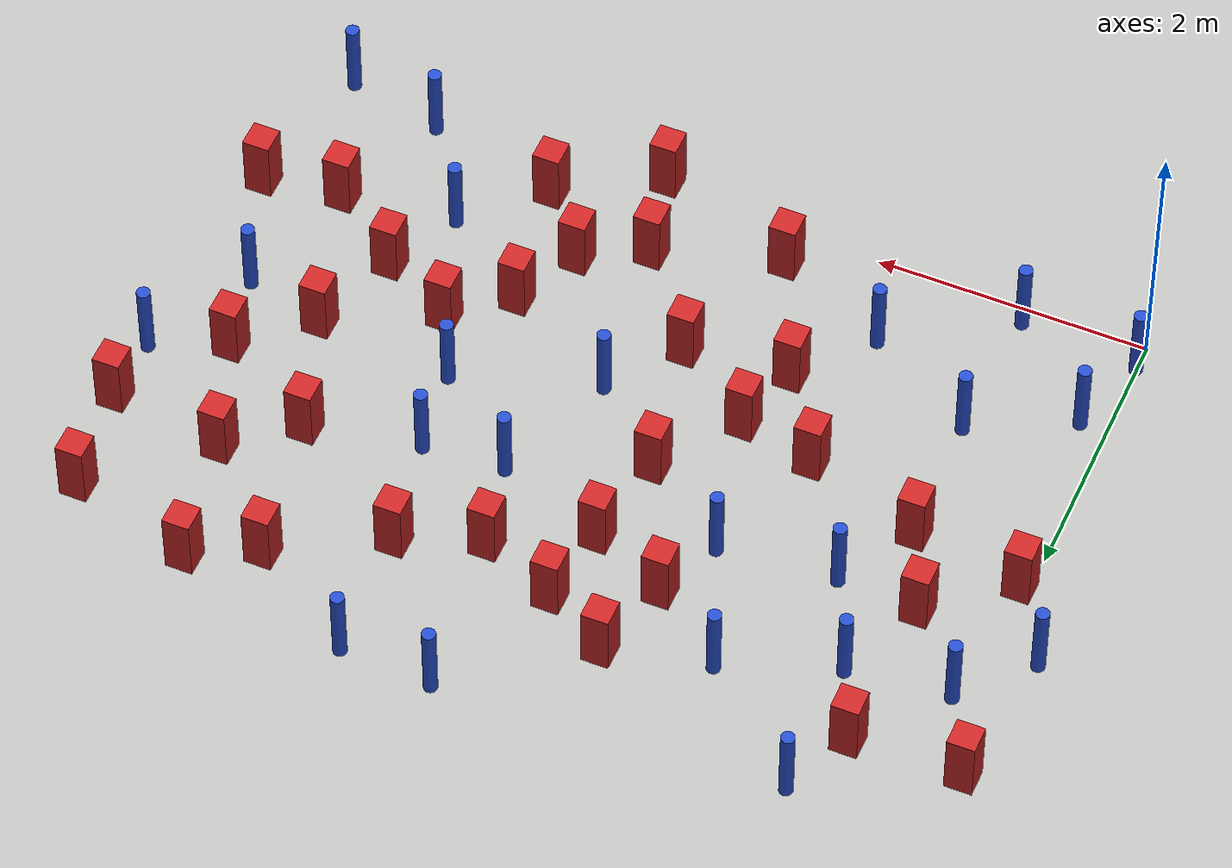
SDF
<sdf version="1.6">
 <model name="dense_37">
  <model name="square_post_obstacle2">
   <static>true</static>
   <pose>-0.138965825792 3.89410492491 1.91545236811e-07 -7.35059704564e-06 1.12565212e-07 2.39332434364e-05</pose>
   <link name="link">
    <pose>0 0 0.25 0 -0 0</pose>
    <inertial>
     <mass>100</mass>
     <inertia>
      <ixx>0.166667</ixx>
      <ixy>0</ixy>
      <ixz>0</ixz>
      <iyy>0.166667</iyy>
      <iyz>0</iyz>
      <izz>0.166667</izz>
     </inertia>
    </inertial>
    <collision name="collision"><geometry><box><size>.2 .2 .5</size></box></geometry></collision>
    <visual name="visual">
     <geometry><box><size>.2 .2 .5</size></box></geometry>
     <material>
      <script><name>Gazebo/Red</name><uri>file://media/materials/scripts/gazebo.material</uri></script>
     </material>
    </visual>
   </link>
  </model>
  <model name="square_post_obstacle3">
   <static>true</static>
   <pose>5.14463022854 1.38851551591 1.91545236811e-07 -7.35059704564e-06 1.12565212e-07 2.39332434364e-05</pose>
   <link name="link">
    <pose>0 0 0.25 0 -0 0</pose>
    <inertial>
     <mass>100</mass>
     <inertia>
      <ixx>0.166667</ixx>
      <ixy>0</ixy>
      <ixz>0</ixz>
      <iyy>0.166667</iyy>
      <iyz>0</iyz>
      <izz>0.166667</izz>
     </inertia>
    </inertial>
    <collision name="collision"><geometry><box><size>.2 .2 .5</size></box></geometry></collision>
    <visual name="visual">
     <geometry><box><size>.2 .2 .5</size></box></geometry>
     <material>
      <script><name>Gazebo/Red</name><uri>file://media/materials/scripts/gazebo.material</uri></script>
     </material>
    </visual>
   </link>
  </model>
  <model name="pole_obstacle3">
   <static>true</static>
   <pose>5.97604875241 1.91269889403 7.38925637345e-09 -8.471706928e-08 1.24976765134e-08 -1.74513093015e-07</pose>
   <link name="link">
    <pose>0 0 0.3 0 -0 0</pose>
    <inertial>
     <mass>1</mass>
     <inertia><ixx>0.145833</ixx><ixy>0</ixy><ixz>0</ixz><iyy>0.145833</iyy><iyz>0</iyz><izz>0.125</izz></inertia>
    </inertial>
    <collision name="collision">
     <geometry><cylinder><radius>0.05</radius><length>.6</length></cylinder></geometry>
    </collision>
    <visual name="visual">
     <geometry><cylinder><radius>0.05</radius><length>.6</length></cylinder></geometry>
     <material>
      <script><name>Gazebo/Blue</name><uri>file://media/materials/scripts/gazebo.material</uri></script>
     </material>
    </visual>
   </link>
  </model>
  <model name="square_post_obstacle10">
   <static>true</static>
   <pose>3.95411249766 0.828914553557 1.91545236811e-07 -7.35059704564e-06 1.12565212e-07 2.39332434364e-05</pose>
   <link name="link">
    <pose>0 0 0.25 0 -0 0</pose>
    <inertial>
     <mass>100</mass>
     <inertia>
      <ixx>0.166667</ixx>
      <ixy>0</ixy>
      <ixz>0</ixz>
      <iyy>0.166667</iyy>
      <iyz>0</iyz>
      <izz>0.166667</izz>
     </inertia>
    </inertial>
    <collision name="collision"><geometry><box><size>.2 .2 .5</size></box></geometry></collision>
    <visual name="visual">
     <geometry><box><size>.2 .2 .5</size></box></geometry>
     <material>
      <script><name>Gazebo/Red</name><uri>file://media/materials/scripts/gazebo.material</uri></script>
     </material>
    </visual>
   </link>
  </model>
  <model name="square_post_obstacle24">
   <static>true</static>
   <pose>4.1140175235 3.5957617354 1.91545236811e-07 -7.35059704564e-06 1.12565212e-07 2.39332434364e-05</pose>
   <link name="link">
    <pose>0 0 0.25 0 -0 0</pose>
    <inertial>
     <mass>100</mass>
     <inertia>
      <ixx>0.166667</ixx>
      <ixy>0</ixy>
      <ixz>0</ixz>
      <iyy>0.166667</iyy>
      <iyz>0</iyz>
      <izz>0.166667</izz>
     </inertia>
    </inertial>
    <collision name="collision"><geometry><box><size>.2 .2 .5</size></box></geometry></collision>
    <visual name="visual">
     <geometry><box><size>.2 .2 .5</size></box></geometry>
     <material>
      <script><name>Gazebo/Red</name><uri>file://media/materials/scripts/gazebo.material</uri></script>
     </material>
    </visual>
   </link>
  </model>
  <model name="square_post_obstacle29">
   <static>true</static>
   <pose>5.37796084478 2.05873233152 1.91545236811e-07 -7.35059704564e-06 1.12565212e-07 2.39332434364e-05</pose>
   <link name="link">
    <pose>0 0 0.25 0 -0 0</pose>
    <inertial>
     <mass>100</mass>
     <inertia>
      <ixx>0.166667</ixx>
      <ixy>0</ixy>
      <ixz>0</ixz>
      <iyy>0.166667</iyy>
      <iyz>0</iyz>
      <izz>0.166667</izz>
     </inertia>
    </inertial>
    <collision name="collision"><geometry><box><size>.2 .2 .5</size></box></geometry></collision>
    <visual name="visual">
     <geometry><box><size>.2 .2 .5</size></box></geometry>
     <material>
      <script><name>Gazebo/Red</name><uri>file://media/materials/scripts/gazebo.material</uri></script>
     </material>
    </visual>
   </link>
  </model>
  <model name="square_post_obstacle31">
   <static>true</static>
   <pose>3.49266288055 0.577960330679 1.91545236811e-07 -7.35059704564e-06 1.12565212e-07 2.39332434364e-05</pose>
   <link name="link">
    <pose>0 0 0.25 0 -0 0</pose>
    <inertial>
     <mass>100</mass>
     <inertia>
      <ixx>0.166667</ixx>
      <ixy>0</ixy>
      <ixz>0</ixz>
      <iyy>0.166667</iyy>
      <iyz>0</iyz>
      <izz>0.166667</izz>
     </inertia>
    </inertial>
    <collision name="collision"><geometry><box><size>.2 .2 .5</size></box></geometry></collision>
    <visual name="visual">
     <geometry><box><size>.2 .2 .5</size></box></geometry>
     <material>
      <script><name>Gazebo/Red</name><uri>file://media/materials/scripts/gazebo.material</uri></script>
     </material>
    </visual>
   </link>
  </model>
  <model name="pole_obstacle31">
   <static>true</static>
   <pose>1.7422377974 0.685097908563 7.38925637345e-09 -8.47170692799e-08 1.24976765075e-08 -1.74513093017e-07</pose>
   <link name="link">
    <pose>0 0 0.3 0 -0 0</pose>
    <inertial>
     <mass>1</mass>
     <inertia><ixx>0.145833</ixx><ixy>0</ixy><ixz>0</ixz><iyy>0.145833</iyy><iyz>0</iyz><izz>0.125</izz></inertia>
    </inertial>
    <collision name="collision">
     <geometry><cylinder><radius>0.05</radius><length>.6</length></cylinder></geometry>
    </collision>
    <visual name="visual">
     <geometry><cylinder><radius>0.05</radius><length>.6</length></cylinder></geometry>
     <material>
      <script><name>Gazebo/Blue</name><uri>file://media/materials/scripts/gazebo.material</uri></script>
     </material>
    </visual>
   </link>
  </model>
  <model name="square_post_obstacle35">
   <static>true</static>
   <pose>5.0781885368 2.94960396655 1.91545236811e-07 -7.35059704564e-06 1.12565212e-07 2.39332434364e-05</pose>
   <link name="link">
    <pose>0 0 0.25 0 -0 0</pose>
    <inertial>
     <mass>100</mass>
     <inertia>
      <ixx>0.166667</ixx>
      <ixy>0</ixy>
      <ixz>0</ixz>
      <iyy>0.166667</iyy>
      <iyz>0</iyz>
      <izz>0.166667</izz>
     </inertia>
    </inertial>
    <collision name="collision"><geometry><box><size>.2 .2 .5</size></box></geometry></collision>
    <visual name="visual">
     <geometry><box><size>.2 .2 .5</size></box></geometry>
     <material>
      <script><name>Gazebo/Red</name><uri>file://media/materials/scripts/gazebo.material</uri></script>
     </material>
    </visual>
   </link>
  </model>
  <model name="pole_obstacle36">
   <static>true</static>
   <pose>1.22455151904 2.71217608818 7.38925637345e-09 -8.47170692799e-08 1.24976765053e-08 -1.74513093017e-07</pose>
   <link name="link">
    <pose>0 0 0.3 0 -0 0</pose>
    <inertial>
     <mass>1</mass>
     <inertia><ixx>0.145833</ixx><ixy>0</ixy><ixz>0</ixz><iyy>0.145833</iyy><iyz>0</iyz><izz>0.125</izz></inertia>
    </inertial>
    <collision name="collision">
     <geometry><cylinder><radius>0.05</radius><length>.6</length></cylinder></geometry>
    </collision>
    <visual name="visual">
     <geometry><cylinder><radius>0.05</radius><length>.6</length></cylinder></geometry>
     <material>
      <script><name>Gazebo/Blue</name><uri>file://media/materials/scripts/gazebo.material</uri></script>
     </material>
    </visual>
   </link>
  </model>
  <model name="square_post_obstacle52">
   <static>true</static>
   <pose>0.0702555440371 2.2899034069 1.91545236811e-07 -7.35059704564e-06 1.12565212e-07 2.39332434364e-05</pose>
   <link name="link">
    <pose>0 0 0.25 0 -0 0</pose>
    <inertial>
     <mass>100</mass>
     <inertia>
      <ixx>0.166667</ixx>
      <ixy>0</ixy>
      <ixz>0</ixz>
      <iyy>0.166667</iyy>
      <iyz>0</iyz>
      <izz>0.166667</izz>
     </inertia>
    </inertial>
    <collision name="collision"><geometry><box><size>.2 .2 .5</size></box></geometry></collision>
    <visual name="visual">
     <geometry><box><size>.2 .2 .5</size></box></geometry>
     <material>
      <script><name>Gazebo/Red</name><uri>file://media/materials/scripts/gazebo.material</uri></script>
     </material>
    </visual>
   </link>
  </model>
  <model name="pole_obstacle55">
   <static>true</static>
   <pose>0.904447537196 3.39687779336 7.38925637345e-09 -8.47170692799e-08 1.2497676509e-08 -1.74513093016e-07</pose>
   <link name="link">
    <pose>0 0 0.3 0 -0 0</pose>
    <inertial>
     <mass>1</mass>
     <inertia><ixx>0.145833</ixx><ixy>0</ixy><ixz>0</ixz><iyy>0.145833</iyy><iyz>0</iyz><izz>0.125</izz></inertia>
    </inertial>
    <collision name="collision">
     <geometry><cylinder><radius>0.05</radius><length>.6</length></cylinder></geometry>
    </collision>
    <visual name="visual">
     <geometry><cylinder><radius>0.05</radius><length>.6</length></cylinder></geometry>
     <material>
      <script><name>Gazebo/Blue</name><uri>file://media/materials/scripts/gazebo.material</uri></script>
     </material>
    </visual>
   </link>
  </model>
  <model name="square_post_obstacle64">
   <static>true</static>
   <pose>2.46749134295 3.88959529614 1.91545236811e-07 -7.35059704564e-06 1.12565212e-07 2.39332434364e-05</pose>
   <link name="link">
    <pose>0 0 0.25 0 -0 0</pose>
    <inertial>
     <mass>100</mass>
     <inertia>
      <ixx>0.166667</ixx>
      <ixy>0</ixy>
      <ixz>0</ixz>
      <iyy>0.166667</iyy>
      <iyz>0</iyz>
      <izz>0.166667</izz>
     </inertia>
    </inertial>
    <collision name="collision"><geometry><box><size>.2 .2 .5</size></box></geometry></collision>
    <visual name="visual">
     <geometry><box><size>.2 .2 .5</size></box></geometry>
     <material>
      <script><name>Gazebo/Red</name><uri>file://media/materials/scripts/gazebo.material</uri></script>
     </material>
    </visual>
   </link>
  </model>
  <model name="square_post_obstacle65">
   <static>true</static>
   <pose>4.60160197744 1.67271273966 1.91545236811e-07 -7.35059704564e-06 1.12565212e-07 2.39332434364e-05</pose>
   <link name="link">
    <pose>0 0 0.25 0 -0 0</pose>
    <inertial>
     <mass>100</mass>
     <inertia>
      <ixx>0.166667</ixx>
      <ixy>0</ixy>
      <ixz>0</ixz>
      <iyy>0.166667</iyy>
      <iyz>0</iyz>
      <izz>0.166667</izz>
     </inertia>
    </inertial>
    <collision name="collision"><geometry><box><size>.2 .2 .5</size></box></geometry></collision>
    <visual name="visual">
     <geometry><box><size>.2 .2 .5</size></box></geometry>
     <material>
      <script><name>Gazebo/Red</name><uri>file://media/materials/scripts/gazebo.material</uri></script>
     </material>
    </visual>
   </link>
  </model>
  <model name="square_post_obstacle67">
   <static>true</static>
   <pose>2.95330168905 3.61341388761 1.91545236811e-07 -7.35059704564e-06 1.12565212e-07 2.39332434364e-05</pose>
   <link name="link">
    <pose>0 0 0.25 0 -0 0</pose>
    <inertial>
     <mass>100</mass>
     <inertia>
      <ixx>0.166667</ixx>
      <ixy>0</ixy>
      <ixz>0</ixz>
      <iyy>0.166667</iyy>
      <iyz>0</iyz>
      <izz>0.166667</izz>
     </inertia>
    </inertial>
    <collision name="collision"><geometry><box><size>.2 .2 .5</size></box></geometry></collision>
    <visual name="visual">
     <geometry><box><size>.2 .2 .5</size></box></geometry>
     <material>
      <script><name>Gazebo/Red</name><uri>file://media/materials/scripts/gazebo.material</uri></script>
     </material>
    </visual>
   </link>
  </model>
  <model name="pole_obstacle65">
   <static>true</static>
   <pose>0.00431629375057 0.201651696689 7.38925637345e-09 -8.47170692799e-08 1.24976764986e-08 -1.74513093021e-07</pose>
   <link name="link">
    <pose>0 0 0.3 0 -0 0</pose>
    <inertial>
     <mass>1</mass>
     <inertia><ixx>0.145833</ixx><ixy>0</ixy><ixz>0</ixz><iyy>0.145833</iyy><iyz>0</iyz><izz>0.125</izz></inertia>
    </inertial>
    <collision name="collision">
     <geometry><cylinder><radius>0.05</radius><length>.6</length></cylinder></geometry>
    </collision>
    <visual name="visual">
     <geometry><cylinder><radius>0.05</radius><length>.6</length></cylinder></geometry>
     <material>
      <script><name>Gazebo/Blue</name><uri>file://media/materials/scripts/gazebo.material</uri></script>
     </material>
    </visual>
   </link>
  </model>
  <model name="pole_obstacle68">
   <static>true</static>
   <pose>3.39816816031 4.59161182173 7.38925637345e-09 -8.47170692798e-08 1.24976765033e-08 -1.74513093019e-07</pose>
   <link name="link">
    <pose>0 0 0.3 0 -0 0</pose>
    <inertial>
     <mass>1</mass>
     <inertia><ixx>0.145833</ixx><ixy>0</ixy><ixz>0</ixz><iyy>0.145833</iyy><iyz>0</iyz><izz>0.125</izz></inertia>
    </inertial>
    <collision name="collision">
     <geometry><cylinder><radius>0.05</radius><length>.6</length></cylinder></geometry>
    </collision>
    <visual name="visual">
     <geometry><cylinder><radius>0.05</radius><length>.6</length></cylinder></geometry>
     <material>
      <script><name>Gazebo/Blue</name><uri>file://media/materials/scripts/gazebo.material</uri></script>
     </material>
    </visual>
   </link>
  </model>
  <model name="pole_obstacle70">
   <static>true</static>
   <pose>0.163192230053 3.31409830576 7.38925637345e-09 -8.47170692792e-08 1.24976764391e-08 -1.74513093041e-07</pose>
   <link name="link">
    <pose>0 0 0.3 0 -0 0</pose>
    <inertial>
     <mass>1</mass>
     <inertia><ixx>0.145833</ixx><ixy>0</ixy><ixz>0</ixz><iyy>0.145833</iyy><iyz>0</iyz><izz>0.125</izz></inertia>
    </inertial>
    <collision name="collision">
     <geometry><cylinder><radius>0.05</radius><length>.6</length></cylinder></geometry>
    </collision>
    <visual name="visual">
     <geometry><cylinder><radius>0.05</radius><length>.6</length></cylinder></geometry>
     <material>
      <script><name>Gazebo/Blue</name><uri>file://media/materials/scripts/gazebo.material</uri></script>
     </material>
    </visual>
   </link>
  </model>
  <model name="pole_obstacle76">
   <static>true</static>
   <pose>2.08085300164 2.79442751341 7.38925637345e-09 -8.47170692798e-08 1.24976764939e-08 -1.74513093025e-07</pose>
   <link name="link">
    <pose>0 0 0.3 0 -0 0</pose>
    <inertial>
     <mass>1</mass>
     <inertia><ixx>0.145833</ixx><ixy>0</ixy><ixz>0</ixz><iyy>0.145833</iyy><iyz>0</iyz><izz>0.125</izz></inertia>
    </inertial>
    <collision name="collision">
     <geometry><cylinder><radius>0.05</radius><length>.6</length></cylinder></geometry>
    </collision>
    <visual name="visual">
     <geometry><cylinder><radius>0.05</radius><length>.6</length></cylinder></geometry>
     <material>
      <script><name>Gazebo/Blue</name><uri>file://media/materials/scripts/gazebo.material</uri></script>
     </material>
    </visual>
   </link>
  </model>
  <model name="square_post_obstacle77">
   <static>true</static>
   <pose>6.28894683591 1.03286256418 1.91545236811e-07 -7.35059704564e-06 1.12565212e-07 2.39332434364e-05</pose>
   <link name="link">
    <pose>0 0 0.25 0 -0 0</pose>
    <inertial>
     <mass>100</mass>
     <inertia>
      <ixx>0.166667</ixx>
      <ixy>0</ixy>
      <ixz>0</ixz>
      <iyy>0.166667</iyy>
      <iyz>0</iyz>
      <izz>0.166667</izz>
     </inertia>
    </inertial>
    <collision name="collision"><geometry><box><size>.2 .2 .5</size></box></geometry></collision>
    <visual name="visual">
     <geometry><box><size>.2 .2 .5</size></box></geometry>
     <material>
      <script><name>Gazebo/Red</name><uri>file://media/materials/scripts/gazebo.material</uri></script>
     </material>
    </visual>
   </link>
  </model>
  <model name="square_post_obstacle78">
   <static>true</static>
   <pose>4.19489611572 1.33245377225 1.91545236811e-07 -7.35059704564e-06 1.12565212e-07 2.39332434364e-05</pose>
   <link name="link">
    <pose>0 0 0.25 0 -0 0</pose>
    <inertial>
     <mass>100</mass>
     <inertia>
      <ixx>0.166667</ixx>
      <ixy>0</ixy>
      <ixz>0</ixz>
      <iyy>0.166667</iyy>
      <iyz>0</iyz>
      <izz>0.166667</izz>
     </inertia>
    </inertial>
    <collision name="collision"><geometry><box><size>.2 .2 .5</size></box></geometry></collision>
    <visual name="visual">
     <geometry><box><size>.2 .2 .5</size></box></geometry>
     <material>
      <script><name>Gazebo/Red</name><uri>file://media/materials/scripts/gazebo.material</uri></script>
     </material>
    </visual>
   </link>
  </model>
  <model name="pole_obstacle94">
   <static>true</static>
   <pose>4.3595060855 2.14647876484 7.38925637345e-09 -8.47170692798e-08 1.24976764937e-08 -1.74513093023e-07</pose>
   <link name="link">
    <pose>0 0 0.3 0 -0 0</pose>
    <inertial>
     <mass>1</mass>
     <inertia><ixx>0.145833</ixx><ixy>0</ixy><ixz>0</ixz><iyy>0.145833</iyy><iyz>0</iyz><izz>0.125</izz></inertia>
    </inertial>
    <collision name="collision">
     <geometry><cylinder><radius>0.05</radius><length>.6</length></cylinder></geometry>
    </collision>
    <visual name="visual">
     <geometry><cylinder><radius>0.05</radius><length>.6</length></cylinder></geometry>
     <material>
      <script><name>Gazebo/Blue</name><uri>file://media/materials/scripts/gazebo.material</uri></script>
     </material>
    </visual>
   </link>
  </model>
  <model name="pole_obstacle97">
   <static>true</static>
   <pose>0.902263964944 4.43381720186 7.38925637345e-09 -8.471706928e-08 1.24976765086e-08 -1.74513093015e-07</pose>
   <link name="link">
    <pose>0 0 0.3 0 -0 0</pose>
    <inertial>
     <mass>1</mass>
     <inertia><ixx>0.145833</ixx><ixy>0</ixy><ixz>0</ixz><iyy>0.145833</iyy><iyz>0</iyz><izz>0.125</izz></inertia>
    </inertial>
    <collision name="collision">
     <geometry><cylinder><radius>0.05</radius><length>.6</length></cylinder></geometry>
    </collision>
    <visual name="visual">
     <geometry><cylinder><radius>0.05</radius><length>.6</length></cylinder></geometry>
     <material>
      <script><name>Gazebo/Blue</name><uri>file://media/materials/scripts/gazebo.material</uri></script>
     </material>
    </visual>
   </link>
  </model>
  <model name="square_post_obstacle88">
   <static>true</static>
   <pose>2.31779961405 1.73828418707 1.91545236811e-07 -7.35059704564e-06 1.12565212e-07 2.39332434364e-05</pose>
   <link name="link">
    <pose>0 0 0.25 0 -0 0</pose>
    <inertial>
     <mass>100</mass>
     <inertia>
      <ixx>0.166667</ixx>
      <ixy>0</ixy>
      <ixz>0</ixz>
      <iyy>0.166667</iyy>
      <iyz>0</iyz>
      <izz>0.166667</izz>
     </inertia>
    </inertial>
    <collision name="collision"><geometry><box><size>.2 .2 .5</size></box></geometry></collision>
    <visual name="visual">
     <geometry><box><size>.2 .2 .5</size></box></geometry>
     <material>
      <script><name>Gazebo/Red</name><uri>file://media/materials/scripts/gazebo.material</uri></script>
     </material>
    </visual>
   </link>
  </model>
  <model name="pole_obstacle106">
   <static>true</static>
   <pose>1.72171827089 3.70765480404 7.38925637345e-09 -8.47170692799e-08 1.24976765053e-08 -1.74513093017e-07</pose>
   <link name="link">
    <pose>0 0 0.3 0 -0 0</pose>
    <inertial>
     <mass>1</mass>
     <inertia><ixx>0.145833</ixx><ixy>0</ixy><ixz>0</ixz><iyy>0.145833</iyy><iyz>0</iyz><izz>0.125</izz></inertia>
    </inertial>
    <collision name="collision">
     <geometry><cylinder><radius>0.05</radius><length>.6</length></cylinder></geometry>
    </collision>
    <visual name="visual">
     <geometry><cylinder><radius>0.05</radius><length>.6</length></cylinder></geometry>
     <material>
      <script><name>Gazebo/Blue</name><uri>file://media/materials/scripts/gazebo.material</uri></script>
     </material>
    </visual>
   </link>
  </model>
  <model name="square_post_obstacle94">
   <static>true</static>
   <pose>2.5878057942 0.294584842697 1.91545236811e-07 -7.35059704564e-06 1.12565212e-07 2.39332434364e-05</pose>
   <link name="link">
    <pose>0 0 0.25 0 -0 0</pose>
    <inertial>
     <mass>100</mass>
     <inertia>
      <ixx>0.166667</ixx>
      <ixy>0</ixy>
      <ixz>0</ixz>
      <iyy>0.166667</iyy>
      <iyz>0</iyz>
      <izz>0.166667</izz>
     </inertia>
    </inertial>
    <collision name="collision"><geometry><box><size>.2 .2 .5</size></box></geometry></collision>
    <visual name="visual">
     <geometry><box><size>.2 .2 .5</size></box></geometry>
     <material>
      <script><name>Gazebo/Red</name><uri>file://media/materials/scripts/gazebo.material</uri></script>
     </material>
    </visual>
   </link>
  </model>
  <model name="square_post_obstacle98">
   <static>true</static>
   <pose>1.76050068355 1.86905709729 1.91545236811e-07 -7.35059704564e-06 1.12565212e-07 2.39332434364e-05</pose>
   <link name="link">
    <pose>0 0 0.25 0 -0 0</pose>
    <inertial>
     <mass>100</mass>
     <inertia>
      <ixx>0.166667</ixx>
      <ixy>0</ixy>
      <ixz>0</ixz>
      <iyy>0.166667</iyy>
      <iyz>0</iyz>
      <izz>0.166667</izz>
     </inertia>
    </inertial>
    <collision name="collision"><geometry><box><size>.2 .2 .5</size></box></geometry></collision>
    <visual name="visual">
     <geometry><box><size>.2 .2 .5</size></box></geometry>
     <material>
      <script><name>Gazebo/Red</name><uri>file://media/materials/scripts/gazebo.material</uri></script>
     </material>
    </visual>
   </link>
  </model>
  <model name="pole_obstacle110">
   <static>true</static>
   <pose>0.92080690967 1.1678289721 7.38925637345e-09 -8.47170692799e-08 1.24976765033e-08 -1.7451309302e-07</pose>
   <link name="link">
    <pose>0 0 0.3 0 -0 0</pose>
    <inertial>
     <mass>1</mass>
     <inertia><ixx>0.145833</ixx><ixy>0</ixy><ixz>0</ixz><iyy>0.145833</iyy><iyz>0</iyz><izz>0.125</izz></inertia>
    </inertial>
    <collision name="collision">
     <geometry><cylinder><radius>0.05</radius><length>.6</length></cylinder></geometry>
    </collision>
    <visual name="visual">
     <geometry><cylinder><radius>0.05</radius><length>.6</length></cylinder></geometry>
     <material>
      <script><name>Gazebo/Blue</name><uri>file://media/materials/scripts/gazebo.material</uri></script>
     </material>
    </visual>
   </link>
  </model>
  <model name="square_post_obstacle99">
   <static>true</static>
   <pose>5.70543708673 0.956556716797 1.91545236811e-07 -7.35059704564e-06 1.12565212e-07 2.39332434364e-05</pose>
   <link name="link">
    <pose>0 0 0.25 0 -0 0</pose>
    <inertial>
     <mass>100</mass>
     <inertia>
      <ixx>0.166667</ixx>
      <ixy>0</ixy>
      <ixz>0</ixz>
      <iyy>0.166667</iyy>
      <iyz>0</iyz>
      <izz>0.166667</izz>
     </inertia>
    </inertial>
    <collision name="collision"><geometry><box><size>.2 .2 .5</size></box></geometry></collision>
    <visual name="visual">
     <geometry><box><size>.2 .2 .5</size></box></geometry>
     <material>
      <script><name>Gazebo/Red</name><uri>file://media/materials/scripts/gazebo.material</uri></script>
     </material>
    </visual>
   </link>
  </model>
  <model name="square_post_obstacle102">
   <static>true</static>
   <pose>5.36546399933 4.27174322469 1.91545236811e-07 -7.35059704564e-06 1.12565212e-07 2.39332434364e-05</pose>
   <link name="link">
    <pose>0 0 0.25 0 -0 0</pose>
    <inertial>
     <mass>100</mass>
     <inertia>
      <ixx>0.166667</ixx>
      <ixy>0</ixy>
      <ixz>0</ixz>
      <iyy>0.166667</iyy>
      <iyz>0</iyz>
      <izz>0.166667</izz>
     </inertia>
    </inertial>
    <collision name="collision"><geometry><box><size>.2 .2 .5</size></box></geometry></collision>
    <visual name="visual">
     <geometry><box><size>.2 .2 .5</size></box></geometry>
     <material>
      <script><name>Gazebo/Red</name><uri>file://media/materials/scripts/gazebo.material</uri></script>
     </material>
    </visual>
   </link>
  </model>
  <model name="pole_obstacle118">
   <static>true</static>
   <pose>3.67298668401 2.73111250935 7.38925637345e-09 -8.47170692798e-08 1.24976764939e-08 -1.74513093025e-07</pose>
   <link name="link">
    <pose>0 0 0.3 0 -0 0</pose>
    <inertial>
     <mass>1</mass>
     <inertia><ixx>0.145833</ixx><ixy>0</ixy><ixz>0</ixz><iyy>0.145833</iyy><iyz>0</iyz><izz>0.125</izz></inertia>
    </inertial>
    <collision name="collision">
     <geometry><cylinder><radius>0.05</radius><length>.6</length></cylinder></geometry>
    </collision>
    <visual name="visual">
     <geometry><cylinder><radius>0.05</radius><length>.6</length></cylinder></geometry>
     <material>
      <script><name>Gazebo/Blue</name><uri>file://media/materials/scripts/gazebo.material</uri></script>
     </material>
    </visual>
   </link>
  </model>
  <model name="square_post_obstacle103">
   <static>true</static>
   <pose>2.7443310339 2.32354825051 1.91545236811e-07 -7.35059704564e-06 1.12565212e-07 2.39332434364e-05</pose>
   <link name="link">
    <pose>0 0 0.25 0 -0 0</pose>
    <inertial>
     <mass>100</mass>
     <inertia>
      <ixx>0.166667</ixx>
      <ixy>0</ixy>
      <ixz>0</ixz>
      <iyy>0.166667</iyy>
      <iyz>0</iyz>
      <izz>0.166667</izz>
     </inertia>
    </inertial>
    <collision name="collision"><geometry><box><size>.2 .2 .5</size></box></geometry></collision>
    <visual name="visual">
     <geometry><box><size>.2 .2 .5</size></box></geometry>
     <material>
      <script><name>Gazebo/Red</name><uri>file://media/materials/scripts/gazebo.material</uri></script>
     </material>
    </visual>
   </link>
  </model>
  <model name="square_post_obstacle110">
   <static>true</static>
   <pose>5.54735582471 3.33137913863 1.91545236811e-07 -7.35059704564e-06 1.12565212e-07 2.39332434364e-05</pose>
   <link name="link">
    <pose>0 0 0.25 0 -0 0</pose>
    <inertial>
     <mass>100</mass>
     <inertia>
      <ixx>0.166667</ixx>
      <ixy>0</ixy>
      <ixz>0</ixz>
      <iyy>0.166667</iyy>
      <iyz>0</iyz>
      <izz>0.166667</izz>
     </inertia>
    </inertial>
    <collision name="collision"><geometry><box><size>.2 .2 .5</size></box></geometry></collision>
    <visual name="visual">
     <geometry><box><size>.2 .2 .5</size></box></geometry>
     <material>
      <script><name>Gazebo/Red</name><uri>file://media/materials/scripts/gazebo.material</uri></script>
     </material>
    </visual>
   </link>
  </model>
  <model name="pole_obstacle124">
   <static>true</static>
   <pose>0.191067560133 0.805281625534 7.38925637345e-09 -8.47170692797e-08 1.24976764912e-08 -1.74513093025e-07</pose>
   <link name="link">
    <pose>0 0 0.3 0 -0 0</pose>
    <inertial>
     <mass>1</mass>
     <inertia><ixx>0.145833</ixx><ixy>0</ixy><ixz>0</ixz><iyy>0.145833</iyy><iyz>0</iyz><izz>0.125</izz></inertia>
    </inertial>
    <collision name="collision">
     <geometry><cylinder><radius>0.05</radius><length>.6</length></cylinder></geometry>
    </collision>
    <visual name="visual">
     <geometry><cylinder><radius>0.05</radius><length>.6</length></cylinder></geometry>
     <material>
      <script><name>Gazebo/Blue</name><uri>file://media/materials/scripts/gazebo.material</uri></script>
     </material>
    </visual>
   </link>
  </model>
  <model name="square_post_obstacle121">
   <static>true</static>
   <pose>6.40349135738 3.20865403521 1.91545236811e-07 -7.35059704564e-06 1.12565212e-07 2.39332434364e-05</pose>
   <link name="link">
    <pose>0 0 0.25 0 -0 0</pose>
    <inertial>
     <mass>100</mass>
     <inertia>
      <ixx>0.166667</ixx>
      <ixy>0</ixy>
      <ixz>0</ixz>
      <iyy>0.166667</iyy>
      <iyz>0</iyz>
      <izz>0.166667</izz>
     </inertia>
    </inertial>
    <collision name="collision"><geometry><box><size>.2 .2 .5</size></box></geometry></collision>
    <visual name="visual">
     <geometry><box><size>.2 .2 .5</size></box></geometry>
     <material>
      <script><name>Gazebo/Red</name><uri>file://media/materials/scripts/gazebo.material</uri></script>
     </material>
    </visual>
   </link>
  </model>
  <model name="pole_obstacle139">
   <static>true</static>
   <pose>3.33122110136 1.80654924732 7.38925637345e-09 -8.471706928e-08 1.24976765152e-08 -1.74513093012e-07</pose>
   <link name="link">
    <pose>0 0 0.3 0 -0 0</pose>
    <inertial>
     <mass>1</mass>
     <inertia><ixx>0.145833</ixx><ixy>0</ixy><ixz>0</ixz><iyy>0.145833</iyy><iyz>0</iyz><izz>0.125</izz></inertia>
    </inertial>
    <collision name="collision">
     <geometry><cylinder><radius>0.05</radius><length>.6</length></cylinder></geometry>
    </collision>
    <visual name="visual">
     <geometry><cylinder><radius>0.05</radius><length>.6</length></cylinder></geometry>
     <material>
      <script><name>Gazebo/Blue</name><uri>file://media/materials/scripts/gazebo.material</uri></script>
     </material>
    </visual>
   </link>
  </model>
  <model name="pole_obstacle141">
   <static>true</static>
   <pose>5.36460090257 0.103062775015 7.38925637345e-09 -8.47170692799e-08 1.24976765066e-08 -1.74513093016e-07</pose>
   <link name="link">
    <pose>0 0 0.3 0 -0 0</pose>
    <inertial>
     <mass>1</mass>
     <inertia><ixx>0.145833</ixx><ixy>0</ixy><ixz>0</ixz><iyy>0.145833</iyy><iyz>0</iyz><izz>0.125</izz></inertia>
    </inertial>
    <collision name="collision">
     <geometry><cylinder><radius>0.05</radius><length>.6</length></cylinder></geometry>
    </collision>
    <visual name="visual">
     <geometry><cylinder><radius>0.05</radius><length>.6</length></cylinder></geometry>
     <material>
      <script><name>Gazebo/Blue</name><uri>file://media/materials/scripts/gazebo.material</uri></script>
     </material>
    </visual>
   </link>
  </model>
  <model name="pole_obstacle143">
   <static>true</static>
   <pose>0.87673713134 0.132313028075 7.38925637345e-09 -8.471706928e-08 1.24976765092e-08 -1.74513093014e-07</pose>
   <link name="link">
    <pose>0 0 0.3 0 -0 0</pose>
    <inertial>
     <mass>1</mass>
     <inertia><ixx>0.145833</ixx><ixy>0</ixy><ixz>0</ixz><iyy>0.145833</iyy><iyz>0</iyz><izz>0.125</izz></inertia>
    </inertial>
    <collision name="collision">
     <geometry><cylinder><radius>0.05</radius><length>.6</length></cylinder></geometry>
    </collision>
    <visual name="visual">
     <geometry><cylinder><radius>0.05</radius><length>.6</length></cylinder></geometry>
     <material>
      <script><name>Gazebo/Blue</name><uri>file://media/materials/scripts/gazebo.material</uri></script>
     </material>
    </visual>
   </link>
  </model>
  <model name="square_post_obstacle136">
   <static>true</static>
   <pose>4.36298839099 0.341302831048 1.91545236811e-07 -7.35059704564e-06 1.12565212e-07 2.39332434364e-05</pose>
   <link name="link">
    <pose>0 0 0.25 0 -0 0</pose>
    <inertial>
     <mass>100</mass>
     <inertia>
      <ixx>0.166667</ixx>
      <ixy>0</ixy>
      <ixz>0</ixz>
      <iyy>0.166667</iyy>
      <iyz>0</iyz>
      <izz>0.166667</izz>
     </inertia>
    </inertial>
    <collision name="collision"><geometry><box><size>.2 .2 .5</size></box></geometry></collision>
    <visual name="visual">
     <geometry><box><size>.2 .2 .5</size></box></geometry>
     <material>
      <script><name>Gazebo/Red</name><uri>file://media/materials/scripts/gazebo.material</uri></script>
     </material>
    </visual>
   </link>
  </model>
  <model name="square_post_obstacle137">
   <static>true</static>
   <pose>6.29671615669 4.00153702977 1.91545236811e-07 -7.35059704564e-06 1.12565212e-07 2.39332434364e-05</pose>
   <link name="link">
    <pose>0 0 0.25 0 -0 0</pose>
    <inertial>
     <mass>100</mass>
     <inertia>
      <ixx>0.166667</ixx>
      <ixy>0</ixy>
      <ixz>0</ixz>
      <iyy>0.166667</iyy>
      <iyz>0</iyz>
      <izz>0.166667</izz>
     </inertia>
    </inertial>
    <collision name="collision"><geometry><box><size>.2 .2 .5</size></box></geometry></collision>
    <visual name="visual">
     <geometry><box><size>.2 .2 .5</size></box></geometry>
     <material>
      <script><name>Gazebo/Red</name><uri>file://media/materials/scripts/gazebo.material</uri></script>
     </material>
    </visual>
   </link>
  </model>
  <model name="square_post_obstacle142">
   <static>true</static>
   <pose>2.17583908435 1.21439173181 1.91545236811e-07 -7.35059704564e-06 1.12565212e-07 2.39332434364e-05</pose>
   <link name="link">
    <pose>0 0 0.25 0 -0 0</pose>
    <inertial>
     <mass>100</mass>
     <inertia>
      <ixx>0.166667</ixx>
      <ixy>0</ixy>
      <ixz>0</ixz>
      <iyy>0.166667</iyy>
      <iyz>0</iyz>
      <izz>0.166667</izz>
     </inertia>
    </inertial>
    <collision name="collision"><geometry><box><size>.2 .2 .5</size></box></geometry></collision>
    <visual name="visual">
     <geometry><box><size>.2 .2 .5</size></box></geometry>
     <material>
      <script><name>Gazebo/Red</name><uri>file://media/materials/scripts/gazebo.material</uri></script>
     </material>
    </visual>
   </link>
  </model>
  <model name="pole_obstacle154">
   <static>true</static>
   <pose>4.27350407744 2.77445538911 7.38925637345e-09 -8.47170692798e-08 1.24976764937e-08 -1.74513093023e-07</pose>
   <link name="link">
    <pose>0 0 0.3 0 -0 0</pose>
    <inertial>
     <mass>1</mass>
     <inertia><ixx>0.145833</ixx><ixy>0</ixy><ixz>0</ixz><iyy>0.145833</iyy><iyz>0</iyz><izz>0.125</izz></inertia>
    </inertial>
    <collision name="collision">
     <geometry><cylinder><radius>0.05</radius><length>.6</length></cylinder></geometry>
    </collision>
    <visual name="visual">
     <geometry><cylinder><radius>0.05</radius><length>.6</length></cylinder></geometry>
     <material>
      <script><name>Gazebo/Blue</name><uri>file://media/materials/scripts/gazebo.material</uri></script>
     </material>
    </visual>
   </link>
  </model>
  <model name="pole_obstacle155">
   <static>true</static>
   <pose>6.07490149262 -0.0525671194133 7.38925637345e-09 -8.47170692799e-08 1.24976765036e-08 -1.7451309302e-07</pose>
   <link name="link">
    <pose>0 0 0.3 0 -0 0</pose>
    <inertial>
     <mass>1</mass>
     <inertia><ixx>0.145833</ixx><ixy>0</ixy><ixz>0</ixz><iyy>0.145833</iyy><iyz>0</iyz><izz>0.125</izz></inertia>
    </inertial>
    <collision name="collision">
     <geometry><cylinder><radius>0.05</radius><length>.6</length></cylinder></geometry>
    </collision>
    <visual name="visual">
     <geometry><cylinder><radius>0.05</radius><length>.6</length></cylinder></geometry>
     <material>
      <script><name>Gazebo/Blue</name><uri>file://media/materials/scripts/gazebo.material</uri></script>
     </material>
    </visual>
   </link>
  </model>
  <model name="square_post_obstacle147">
   <static>true</static>
   <pose>2.93563737621 1.29784893824 1.91545236811e-07 -7.35059704564e-06 1.12565212e-07 2.39332434364e-05</pose>
   <link name="link">
    <pose>0 0 0.25 0 -0 0</pose>
    <inertial>
     <mass>100</mass>
     <inertia>
      <ixx>0.166667</ixx>
      <ixy>0</ixy>
      <ixz>0</ixz>
      <iyy>0.166667</iyy>
      <iyz>0</iyz>
      <izz>0.166667</izz>
     </inertia>
    </inertial>
    <collision name="collision"><geometry><box><size>.2 .2 .5</size></box></geometry></collision>
    <visual name="visual">
     <geometry><box><size>.2 .2 .5</size></box></geometry>
     <material>
      <script><name>Gazebo/Red</name><uri>file://media/materials/scripts/gazebo.material</uri></script>
     </material>
    </visual>
   </link>
  </model>
  <model name="pole_obstacle165">
   <static>true</static>
   <pose>-0.270992686049 2.84189945677 7.38925637345e-09 -8.471706928e-08 1.24976765139e-08 -1.74513093014e-07</pose>
   <link name="link">
    <pose>0 0 0.3 0 -0 0</pose>
    <inertial>
     <mass>1</mass>
     <inertia><ixx>0.145833</ixx><ixy>0</ixy><ixz>0</ixz><iyy>0.145833</iyy><iyz>0</iyz><izz>0.125</izz></inertia>
    </inertial>
    <collision name="collision">
     <geometry><cylinder><radius>0.05</radius><length>.6</length></cylinder></geometry>
    </collision>
    <visual name="visual">
     <geometry><cylinder><radius>0.05</radius><length>.6</length></cylinder></geometry>
     <material>
      <script><name>Gazebo/Blue</name><uri>file://media/materials/scripts/gazebo.material</uri></script>
     </material>
    </visual>
   </link>
  </model>
  <model name="square_post_obstacle163">
   <static>true</static>
   <pose>5.85555483544 2.49526825522 1.91545236811e-07 -7.35059704564e-06 1.12565212e-07 2.39332434364e-05</pose>
   <link name="link">
    <pose>0 0 0.25 0 -0 0</pose>
    <inertial>
     <mass>100</mass>
     <inertia>
      <ixx>0.166667</ixx>
      <ixy>0</ixy>
      <ixz>0</ixz>
      <iyy>0.166667</iyy>
      <iyz>0</iyz>
      <izz>0.166667</izz>
     </inertia>
    </inertial>
    <collision name="collision"><geometry><box><size>.2 .2 .5</size></box></geometry></collision>
    <visual name="visual">
     <geometry><box><size>.2 .2 .5</size></box></geometry>
     <material>
      <script><name>Gazebo/Red</name><uri>file://media/materials/scripts/gazebo.material</uri></script>
     </material>
    </visual>
   </link>
  </model>
  <model name="pole_obstacle186">
   <static>true</static>
   <pose>4.07852052353 4.55731223871 7.38925637345e-09 -8.47170692796e-08 1.24976764786e-08 -1.74513093032e-07</pose>
   <link name="link">
    <pose>0 0 0.3 0 -0 0</pose>
    <inertial>
     <mass>1</mass>
     <inertia><ixx>0.145833</ixx><ixy>0</ixy><ixz>0</ixz><iyy>0.145833</iyy><iyz>0</iyz><izz>0.125</izz></inertia>
    </inertial>
    <collision name="collision">
     <geometry><cylinder><radius>0.05</radius><length>.6</length></cylinder></geometry>
    </collision>
    <visual name="visual">
     <geometry><cylinder><radius>0.05</radius><length>.6</length></cylinder></geometry>
     <material>
      <script><name>Gazebo/Blue</name><uri>file://media/materials/scripts/gazebo.material</uri></script>
     </material>
    </visual>
   </link>
  </model>
  <model name="square_post_obstacle182">
   <static>true</static>
   <pose>4.89114206241 4.03238972312 1.91545236811e-07 -7.35059704564e-06 1.12565212e-07 2.39332434364e-05</pose>
   <link name="link">
    <pose>0 0 0.25 0 -0 0</pose>
    <inertial>
     <mass>100</mass>
     <inertia>
      <ixx>0.166667</ixx>
      <ixy>0</ixy>
      <ixz>0</ixz>
      <iyy>0.166667</iyy>
      <iyz>0</iyz>
      <izz>0.166667</izz>
     </inertia>
    </inertial>
    <collision name="collision"><geometry><box><size>.2 .2 .5</size></box></geometry></collision>
    <visual name="visual">
     <geometry><box><size>.2 .2 .5</size></box></geometry>
     <material>
      <script><name>Gazebo/Red</name><uri>file://media/materials/scripts/gazebo.material</uri></script>
     </material>
    </visual>
   </link>
  </model>
  <model name="square_post_obstacle188">
   <static>true</static>
   <pose>0.630352029219 2.75181247238 1.91545236811e-07 -7.35059704564e-06 1.12565212e-07 2.39332434364e-05</pose>
   <link name="link">
    <pose>0 0 0.25 0 -0 0</pose>
    <inertial>
     <mass>100</mass>
     <inertia>
      <ixx>0.166667</ixx>
      <ixy>0</ixy>
      <ixz>0</ixz>
      <iyy>0.166667</iyy>
      <iyz>0</iyz>
      <izz>0.166667</izz>
     </inertia>
    </inertial>
    <collision name="collision"><geometry><box><size>.2 .2 .5</size></box></geometry></collision>
    <visual name="visual">
     <geometry><box><size>.2 .2 .5</size></box></geometry>
     <material>
      <script><name>Gazebo/Red</name><uri>file://media/materials/scripts/gazebo.material</uri></script>
     </material>
    </visual>
   </link>
  </model>
  <model name="square_post_obstacle191">
   <static>true</static>
   <pose>0.667543835318 3.92040506279 1.91545236811e-07 -7.35059704564e-06 1.12565212e-07 2.39332434364e-05</pose>
   <link name="link">
    <pose>0 0 0.25 0 -0 0</pose>
    <inertial>
     <mass>100</mass>
     <inertia>
      <ixx>0.166667</ixx>
      <ixy>0</ixy>
      <ixz>0</ixz>
      <iyy>0.166667</iyy>
      <iyz>0</iyz>
      <izz>0.166667</izz>
     </inertia>
    </inertial>
    <collision name="collision"><geometry><box><size>.2 .2 .5</size></box></geometry></collision>
    <visual name="visual">
     <geometry><box><size>.2 .2 .5</size></box></geometry>
     <material>
      <script><name>Gazebo/Red</name><uri>file://media/materials/scripts/gazebo.material</uri></script>
     </material>
    </visual>
   </link>
  </model>
  <model name="square_post_obstacle192">
   <static>true</static>
   <pose>3.52108912221 3.37461014823 1.91545236811e-07 -7.35059704564e-06 1.12565212e-07 2.39332434364e-05</pose>
   <link name="link">
    <pose>0 0 0.25 0 -0 0</pose>
    <inertial>
     <mass>100</mass>
     <inertia>
      <ixx>0.166667</ixx>
      <ixy>0</ixy>
      <ixz>0</ixz>
      <iyy>0.166667</iyy>
      <iyz>0</iyz>
      <izz>0.166667</izz>
     </inertia>
    </inertial>
    <collision name="collision"><geometry><box><size>.2 .2 .5</size></box></geometry></collision>
    <visual name="visual">
     <geometry><box><size>.2 .2 .5</size></box></geometry>
     <material>
      <script><name>Gazebo/Red</name><uri>file://media/materials/scripts/gazebo.material</uri></script>
     </material>
    </visual>
   </link>
  </model>
  <model name="square_post_obstacle196">
   <static>true</static>
   <pose>3.64492574496 -0.0768338833891 1.91545236811e-07 -7.35059704564e-06 1.12565212e-07 2.39332434364e-05</pose>
   <link name="link">
    <pose>0 0 0.25 0 -0 0</pose>
    <inertial>
     <mass>100</mass>
     <inertia>
      <ixx>0.166667</ixx>
      <ixy>0</ixy>
      <ixz>0</ixz>
      <iyy>0.166667</iyy>
      <iyz>0</iyz>
      <izz>0.166667</izz>
     </inertia>
    </inertial>
    <collision name="collision"><geometry><box><size>.2 .2 .5</size></box></geometry></collision>
    <visual name="visual">
     <geometry><box><size>.2 .2 .5</size></box></geometry>
     <material>
      <script><name>Gazebo/Red</name><uri>file://media/materials/scripts/gazebo.material</uri></script>
     </material>
    </visual>
   </link>
  </model>
  <model name="square_post_obstacle202">
   <static>true</static>
   <pose>2.85928667563 3.02329963935 1.91545236811e-07 -7.35059704564e-06 1.12565212e-07 2.39332434364e-05</pose>
   <link name="link">
    <pose>0 0 0.25 0 -0 0</pose>
    <inertial>
     <mass>100</mass>
     <inertia>
      <ixx>0.166667</ixx>
      <ixy>0</ixy>
      <ixz>0</ixz>
      <iyy>0.166667</iyy>
      <iyz>0</iyz>
      <izz>0.166667</izz>
     </inertia>
    </inertial>
    <collision name="collision"><geometry><box><size>.2 .2 .5</size></box></geometry></collision>
    <visual name="visual">
     <geometry><box><size>.2 .2 .5</size></box></geometry>
     <material>
      <script><name>Gazebo/Red</name><uri>file://media/materials/scripts/gazebo.material</uri></script>
     </material>
    </visual>
   </link>
  </model>
  <model name="pole_obstacle191">
   <static>true</static>
   <pose>6.39631408897 2.70836992009 7.38925637345e-09 -8.47170692798e-08 1.24976764937e-08 -1.74513093023e-07</pose>
   <link name="link">
    <pose>0 0 0.3 0 -0 0</pose>
    <inertial>
     <mass>1</mass>
     <inertia><ixx>0.145833</ixx><ixy>0</ixy><ixz>0</ixz><iyy>0.145833</iyy><iyz>0</iyz><izz>0.125</izz></inertia>
    </inertial>
    <collision name="collision">
     <geometry><cylinder><radius>0.05</radius><length>.6</length></cylinder></geometry>
    </collision>
    <visual name="visual">
     <geometry><cylinder><radius>0.05</radius><length>.6</length></cylinder></geometry>
     <material>
      <script><name>Gazebo/Blue</name><uri>file://media/materials/scripts/gazebo.material</uri></script>
     </material>
    </visual>
   </link>
  </model>
  <model name="square_post_obstacle209">
   <static>true</static>
   <pose>2.28717439233 3.2844136198 1.91545236811e-07 -7.35059704564e-06 1.12565212e-07 2.39332434364e-05</pose>
   <link name="link">
    <pose>0 0 0.25 0 -0 0</pose>
    <inertial>
     <mass>100</mass>
     <inertia>
      <ixx>0.166667</ixx>
      <ixy>0</ixy>
      <ixz>0</ixz>
      <iyy>0.166667</iyy>
      <iyz>0</iyz>
      <izz>0.166667</izz>
     </inertia>
    </inertial>
    <collision name="collision"><geometry><box><size>.2 .2 .5</size></box></geometry></collision>
    <visual name="visual">
     <geometry><box><size>.2 .2 .5</size></box></geometry>
     <material>
      <script><name>Gazebo/Red</name><uri>file://media/materials/scripts/gazebo.material</uri></script>
     </material>
    </visual>
   </link>
  </model>
  <model name="square_post_obstacle210">
   <static>true</static>
   <pose>0.890004036779 2.15568831989 1.91545236811e-07 -7.35059704564e-06 1.12565212e-07 2.39332434364e-05</pose>
   <link name="link">
    <pose>0 0 0.25 0 -0 0</pose>
    <inertial>
     <mass>100</mass>
     <inertia>
      <ixx>0.166667</ixx>
      <ixy>0</ixy>
      <ixz>0</ixz>
      <iyy>0.166667</iyy>
      <iyz>0</iyz>
      <izz>0.166667</izz>
     </inertia>
    </inertial>
    <collision name="collision"><geometry><box><size>.2 .2 .5</size></box></geometry></collision>
    <visual name="visual">
     <geometry><box><size>.2 .2 .5</size></box></geometry>
     <material>
      <script><name>Gazebo/Red</name><uri>file://media/materials/scripts/gazebo.material</uri></script>
     </material>
    </visual>
   </link>
  </model>
  <model name="pole_obstacle204">
   <static>true</static>
   <pose>4.88209614093 0.835302304923 7.38925637345e-09 -8.47170692799e-08 1.24976765038e-08 -1.74513093018e-07</pose>
   <link name="link">
    <pose>0 0 0.3 0 -0 0</pose>
    <inertial>
     <mass>1</mass>
     <inertia><ixx>0.145833</ixx><ixy>0</ixy><ixz>0</ixz><iyy>0.145833</iyy><iyz>0</iyz><izz>0.125</izz></inertia>
    </inertial>
    <collision name="collision">
     <geometry><cylinder><radius>0.05</radius><length>.6</length></cylinder></geometry>
    </collision>
    <visual name="visual">
     <geometry><cylinder><radius>0.05</radius><length>.6</length></cylinder></geometry>
     <material>
      <script><name>Gazebo/Blue</name><uri>file://media/materials/scripts/gazebo.material</uri></script>
     </material>
    </visual>
   </link>
  </model>
 </model>
</sdf>
